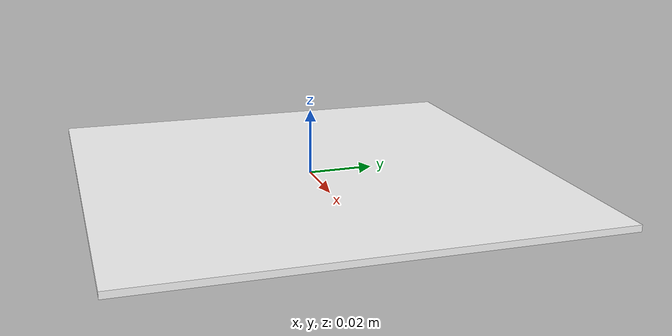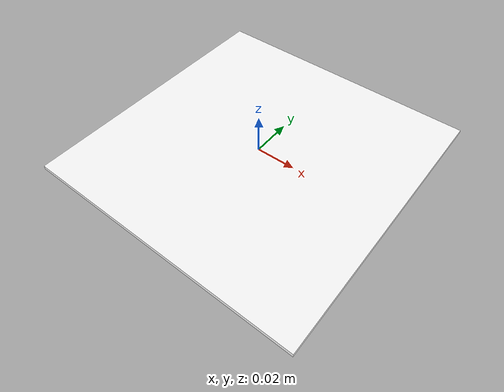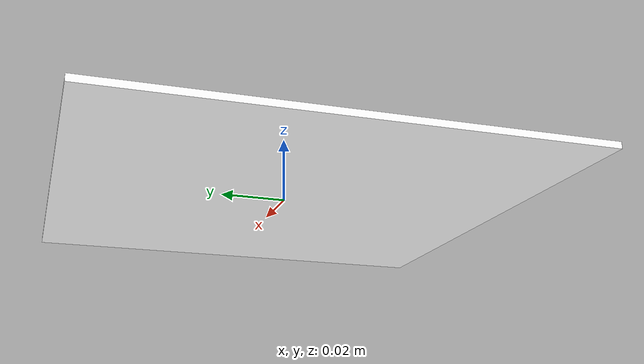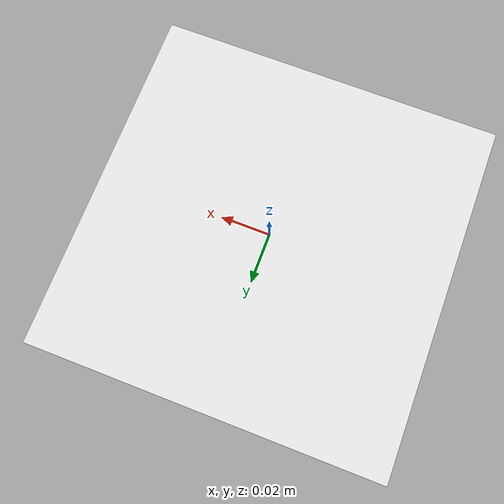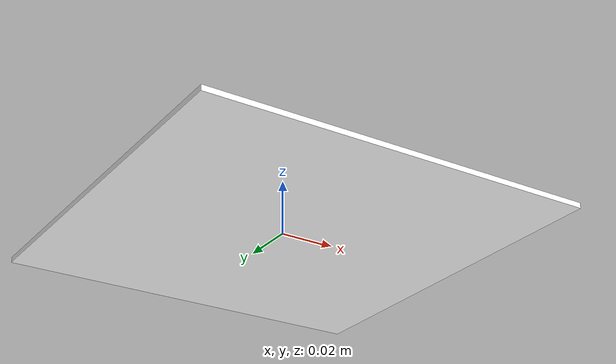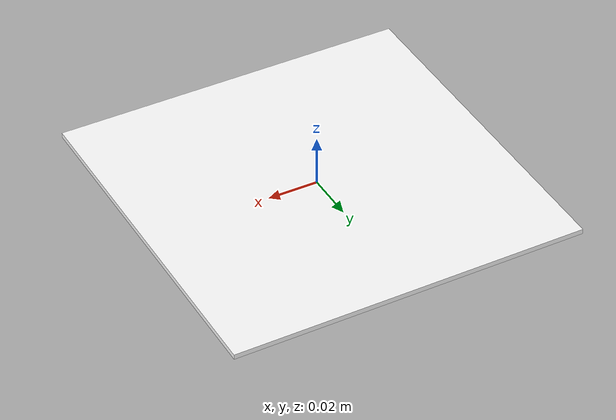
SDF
<?xml version="1.0"?>
<sdf version="1.6">
  <model name="Apriltag25_09_00000">
    <static>true</static>
    <link name="main">
      <visual name="main_Visual">
        <geometry>
          <box>
            <size>0.141 0.141 0.002</size>
          </box>
        </geometry>
        <material>
          <ambient>1 1 1 1</ambient>
          <diffuse>1 1 1 1</diffuse>
          <pbr>
            <metal>
              <albedo_map>model://Apriltag25_09_00000/materials/textures/tag25_09_00000.png</albedo_map>
              <roughness>0.9</roughness>
              <metalness>0.0</metalness>
            </metal>
          </pbr>
          <script>
            <uri>model://Apriltag25_09_00000/materials/scripts</uri>
            <uri>model://Apriltag25_09_00000/materials/textures</uri>
            <name>Apriltag25_09_00000</name>
          </script>
        </material>
      </visual>
    </link>
  </model>
</sdf>
